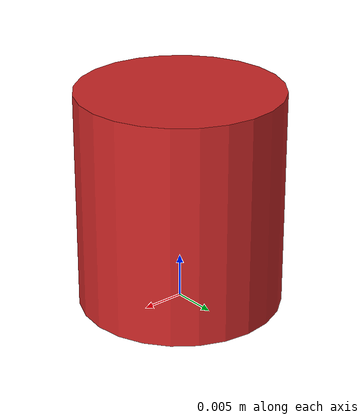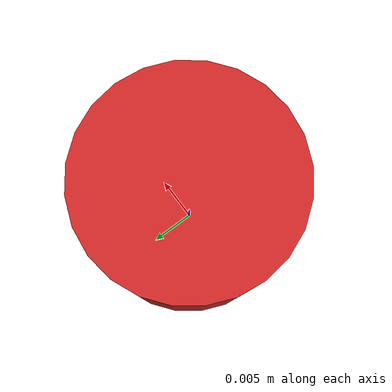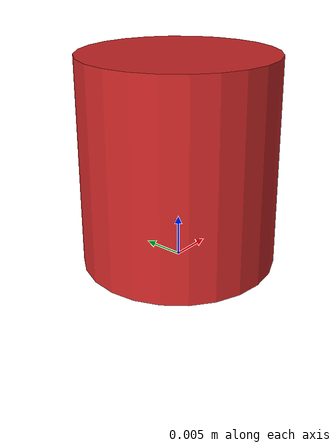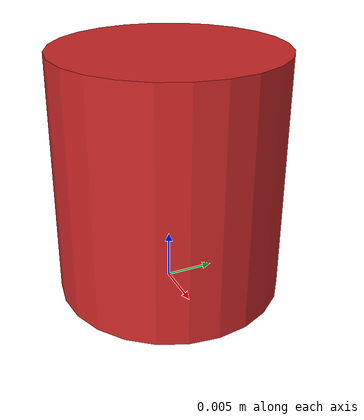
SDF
<?xml version="1.0" ?>
<sdf version="1.6">
  <model name="Red_Checker">
    <static>false</static>
    <link name="red_checker">
      <pose>0 0 0.0125 0 0 0</pose>
      <collision name="collision">
        <geometry>
            <cylinder>
              <radius>.0116</radius>
              <length>.025</length>
            </cylinder>
        </geometry>
              <surface>
        <friction>
          <ode>
            <mu>0.01</mu>
            <mu2>0.01</mu2>
          </ode>
        </friction>
      </surface>
      </collision>
      <visual name="visual">
        <cast_shadows>false</cast_shadows>
        <geometry>
            <cylinder>
              <radius>.0116</radius>
              <length>.025</length>
            </cylinder>
        </geometry>
        <material>
        <script>
            <uri>file://media/materials/scripts/gazebo.material</uri>
            <name>Gazebo/Red</name>
        </script>
        </material>
      </visual>
     <inertial>
        <mass>0.021</mass>
        <inertia>
          <ixx>0.000002</ixx>
          <ixy>0.0</ixy>
          <ixz>0.0</ixz>
          <iyy>0.000002</iyy>
          <iyz>0.0</iyz>
          <izz>0.000002</izz>
        </inertia>
      </inertial>
    </link>
  </model>

</sdf>
